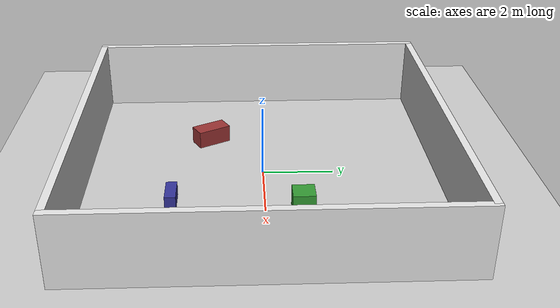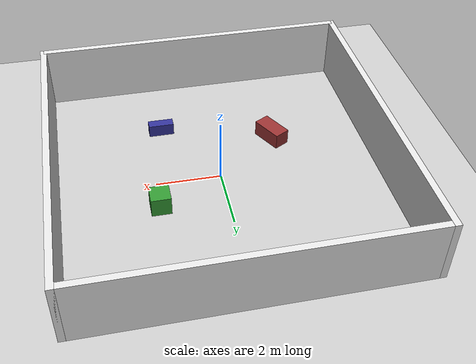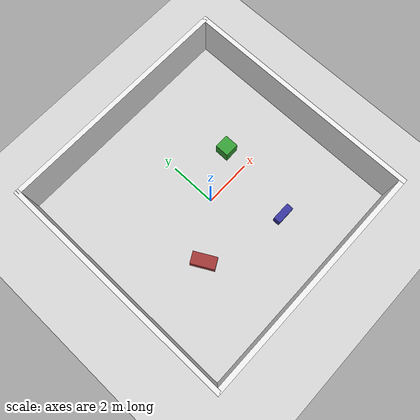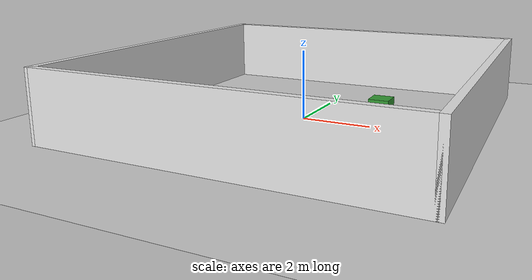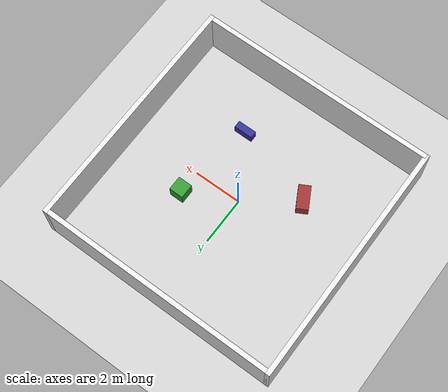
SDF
<?xml version="1.0" ?>
<sdf version="1.9">
  <world name="guardian_world">

    <physics name="1ms" type="ignored">
      <max_step_size>0.001</max_step_size>
      <real_time_factor>1.0</real_time_factor>
    </physics>

    <plugin filename="gz-sim-physics-system"        name="gz::sim::systems::Physics"/>
    <plugin filename="gz-sim-user-commands-system"  name="gz::sim::systems::UserCommands"/>
    <plugin filename="gz-sim-scene-broadcaster-system" name="gz::sim::systems::SceneBroadcaster"/>
    <plugin filename="gz-sim-sensors-system"        name="gz::sim::systems::Sensors">
      <render_engine>ogre2</render_engine>
    </plugin>

    <!-- Sun -->
    <light name="sun" type="directional">
      <cast_shadows>true</cast_shadows>
      <pose>0 0 10 0 0 0</pose>
      <diffuse>0.8 0.8 0.8 1</diffuse>
      <specular>0.2 0.2 0.2 1</specular>
      <direction>-0.5 0.1 -0.9</direction>
    </light>

    <!-- Ground plane -->
    <model name="ground_plane">
      <static>true</static>
      <link name="link">
        <collision name="collision">
          <geometry><plane><normal>0 0 1</normal><size>50 50</size></plane></geometry>
          <surface><friction><ode><mu>1</mu><mu2>1</mu2></ode></friction></surface>
        </collision>
        <visual name="visual">
          <geometry><plane><normal>0 0 1</normal><size>50 50</size></plane></geometry>
          <material><ambient>0.8 0.8 0.8 1</ambient><diffuse>0.8 0.8 0.8 1</diffuse></material>
        </visual>
      </link>
    </model>

    <!-- ── 10 × 10 m room walls ─────────────────────────────────────────────── -->
    <model name="wall_north">
      <static>true</static><pose>5 0 1 0 0 0</pose>
      <link name="link">
        <collision name="c"><geometry><box><size>0.2 10.2 2</size></box></geometry></collision>
        <visual name="v"><geometry><box><size>0.2 10.2 2</size></box></geometry>
          <material><ambient>0.9 0.9 0.9 1</ambient></material></visual>
      </link>
    </model>

    <model name="wall_south">
      <static>true</static><pose>-5 0 1 0 0 0</pose>
      <link name="link">
        <collision name="c"><geometry><box><size>0.2 10.2 2</size></box></geometry></collision>
        <visual name="v"><geometry><box><size>0.2 10.2 2</size></box></geometry>
          <material><ambient>0.9 0.9 0.9 1</ambient></material></visual>
      </link>
    </model>

    <model name="wall_east">
      <static>true</static><pose>0 5 1 0 0 0</pose>
      <link name="link">
        <collision name="c"><geometry><box><size>10 0.2 2</size></box></geometry></collision>
        <visual name="v"><geometry><box><size>10 0.2 2</size></box></geometry>
          <material><ambient>0.9 0.9 0.9 1</ambient></material></visual>
      </link>
    </model>

    <model name="wall_west">
      <static>true</static><pose>0 -5 1 0 0 0</pose>
      <link name="link">
        <collision name="c"><geometry><box><size>10 0.2 2</size></box></geometry></collision>
        <visual name="v"><geometry><box><size>10 0.2 2</size></box></geometry>
          <material><ambient>0.9 0.9 0.9 1</ambient></material></visual>
      </link>
    </model>

    <!-- ── Obstacles ────────────────────────────────────────────────────────── -->
    <model name="box_1">
      <static>true</static><pose>2 1 0.3 0 0 0</pose>
      <link name="link">
        <collision name="c"><geometry><box><size>0.6 0.6 0.6</size></box></geometry></collision>
        <visual name="v"><geometry><box><size>0.6 0.6 0.6</size></box></geometry>
          <material><ambient>0.2 0.6 0.2 1</ambient></material></visual>
      </link>
    </model>

    <model name="box_2">
      <static>true</static><pose>-2 -1.5 0.25 0 0 0.5</pose>
      <link name="link">
        <collision name="c"><geometry><box><size>0.5 1.0 0.5</size></box></geometry></collision>
        <visual name="v"><geometry><box><size>0.5 1.0 0.5</size></box></geometry>
          <material><ambient>0.6 0.2 0.2 1</ambient></material></visual>
      </link>
    </model>

    <model name="box_3">
      <static>true</static><pose>1.5 -2.5 0.2 0 0 0</pose>
      <link name="link">
        <collision name="c"><geometry><box><size>0.8 0.3 0.4</size></box></geometry></collision>
        <visual name="v"><geometry><box><size>0.8 0.3 0.4</size></box></geometry>
          <material><ambient>0.2 0.2 0.6 1</ambient></material></visual>
      </link>
    </model>

  </world>
</sdf>
